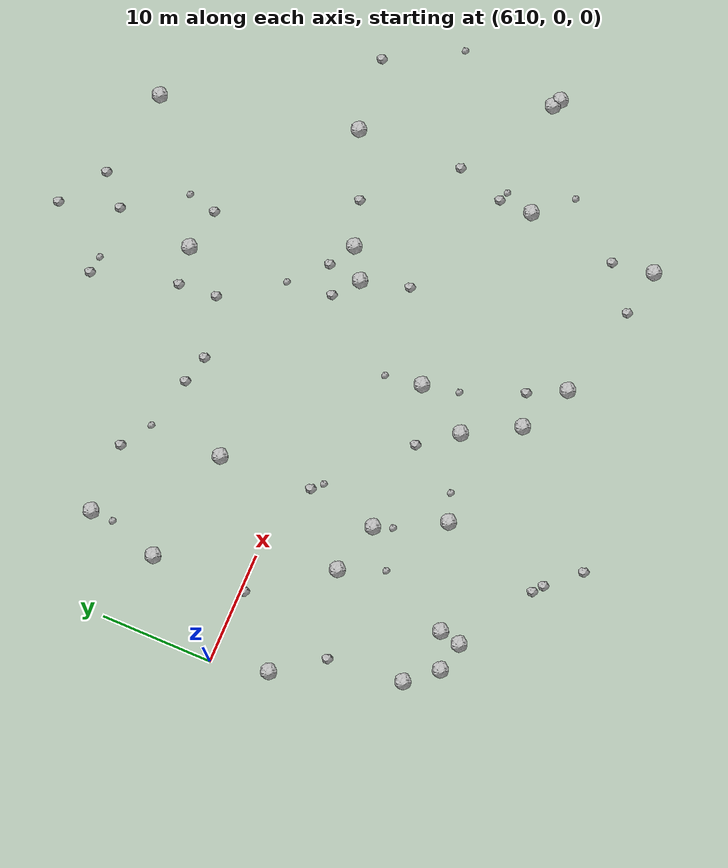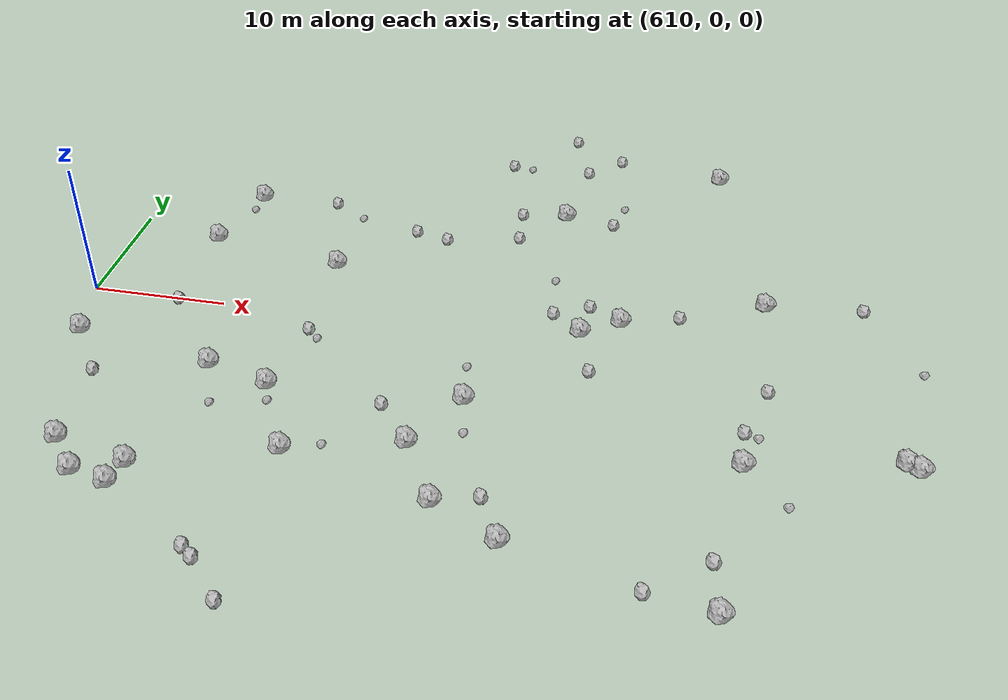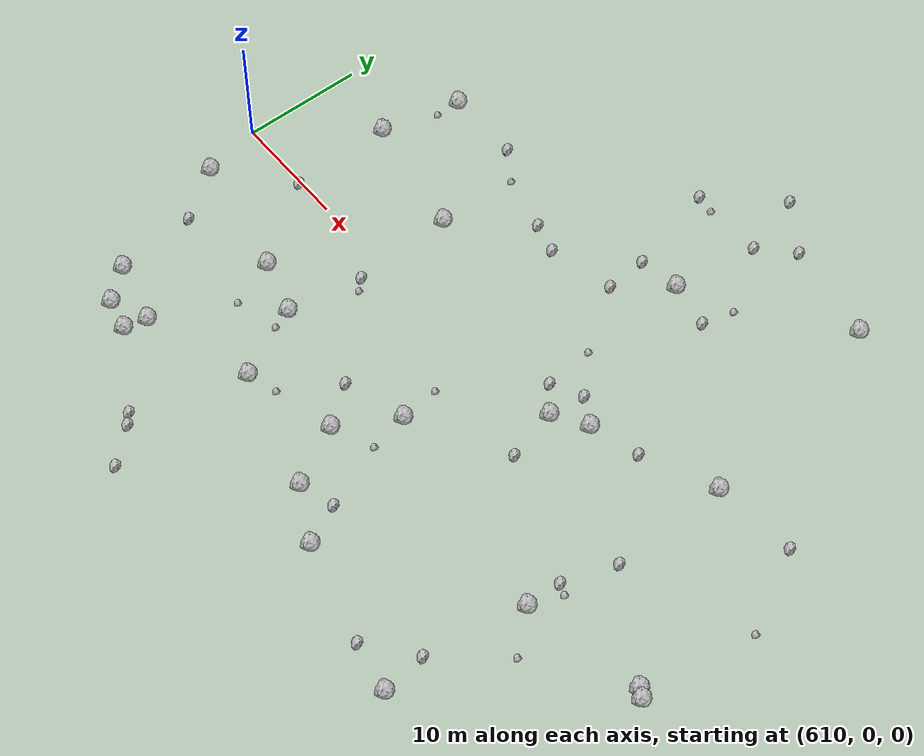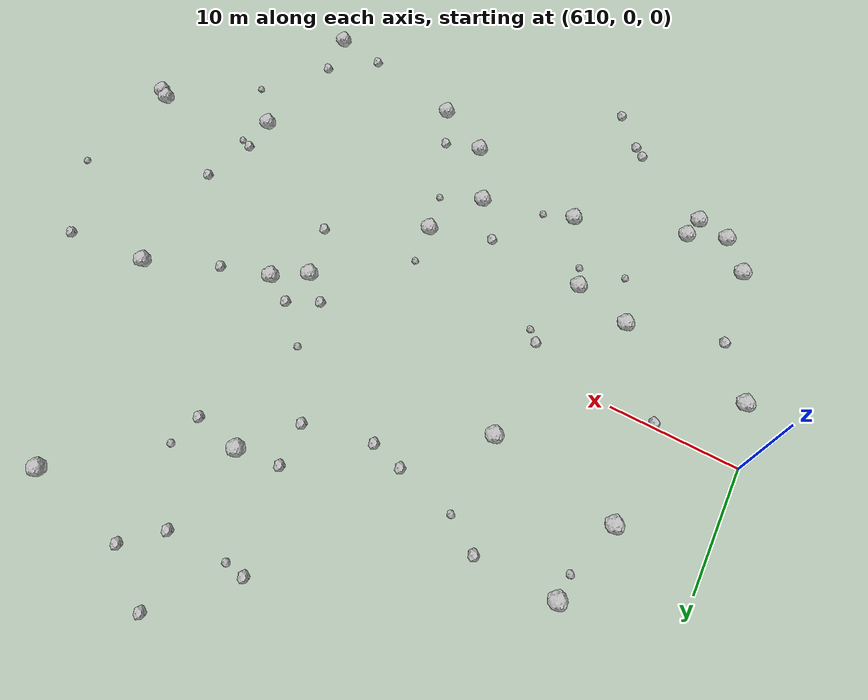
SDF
<sdf version="1.6">
 <world name="default">
  <include><uri>model://sun</uri></include>
  <model name="rock1_16_3">
   <include><uri>model://rock1</uri><pose>617.0494557323835 -18.49480501999132 0.5 0 0 0</pose></include>
  </model>
  <model name="rock1_16_4">
   <include><uri>model://rock1</uri><pose>646.1744182489397 1.2811866185874692 0.5 0 0 0</pose></include>
  </model>
  <model name="rock1_16_5">
   <include><uri>model://rock1</uri><pose>626.8093369121839 6.366160672136488 0.5 0 0 0</pose></include>
  </model>
  <model name="rock1_16_6">
   <include><uri>model://rock1</uri><pose>659.0519653746056 6.8269915031048 0.5 0 0 0</pose></include>
  </model>
  <model name="rock1_16_7">
   <include><uri>model://rock1</uri><pose>667.8788826154242 -8.370564915529727 0.5 0 0 0</pose></include>
  </model>
  <model name="rock1_16_8">
   <include><uri>model://rock1</uri><pose>619.7253466311382 -19.126950748516673 0.5 0 0 0</pose></include>
  </model>
  <model name="rock1_16_9">
   <include><uri>model://rock1</uri><pose>629.1833630455633 -14.240156634659707 0.5 0 0 0</pose></include>
  </model>
  <model name="rock1_16_10">
   <include><uri>model://rock1</uri><pose>639.5715355456684 -7.410364354370216 0.5 0 0 0</pose></include>
  </model>
  <model name="rock1_16_11">
   <include><uri>model://rock1</uri><pose>620.1409756738882 -17.23979650751474 0.5 0 0 0</pose></include>
  </model>
  <model name="rock1_16_12">
   <include><uri>model://rock1</uri><pose>636.8690060828787 -12.196933897625769 0.5 0 0 0</pose></include>
  </model>
  <model name="rock1_16_13">
   <include><uri>model://rock1</uri><pose>656.9567355685807 -22.45739277485777 0.5 0 0 0</pose></include>
  </model>
  <model name="rock1_16_14">
   <include><uri>model://rock1</uri><pose>648.883992103827 2.977677823399162 0.5 0 0 0</pose></include>
  </model>
  <model name="rock1_16_15">
   <include><uri>model://rock1</uri><pose>668.642762389718 -8.817548981771257 0.5 0 0 0</pose></include>
  </model>
  <model name="rock1_16_16">
   <include><uri>model://rock1</uri><pose>644.0830754731516 -19.40189916681614 0.5 0 0 0</pose></include>
  </model>
  <model name="rock1_16_17">
   <include><uri>model://rock1</uri><pose>616.521691105695 8.213514277177623 0.5 0 0 0</pose></include>
  </model>
  <model name="rock1_16_18">
   <include><uri>model://rock1</uri><pose>626.2412509278568 -8.338701966944441 0.5 0 0 0</pose></include>
  </model>
  <model name="rock1_16_19">
   <include><uri>model://rock1</uri><pose>621.6088045655118 -6.969538580016778 0.5 0 0 0</pose></include>
  </model>
  <model name="rock1_16_20">
   <include><uri>model://rock1</uri><pose>657.8710896656933 -10.358247441844032 0.5 0 0 0</pose></include>
  </model>
  <model name="rock1_16_21">
   <include><uri>model://rock1</uri><pose>614.8759232782635 -15.925947518641486 0.5 0 0 0</pose></include>
  </model>
  <model name="rock1_16_22">
   <include><uri>model://rock1</uri><pose>611.1850523628748 -4.986747932894502 0.5 0 0 0</pose></include>
  </model>
  <model name="rock1_16_23">
   <include><uri>model://rock1</uri><pose>639.5150763650269 -16.98180152667323 0.5 0 0 0</pose></include>
  </model>
  <model name="rock1_16_24">
   <include><uri>model://rock1</uri><pose>643.1254025586695 16.451489404362285 0.5 0 0 0</pose></include>
  </model>
  <model name="rock1_16_25">
   <include><uri>model://rock1</uri><pose>655.0637864828053 24.61607443385892 0.5 0 0 0</pose></include>
  </model>
  <model name="rock1_16_26">
   <include><uri>model://rock1</uri><pose>618.0353888954576 14.771364453222361 0.5 0 0 0</pose></include>
  </model>
  <model name="rock2_16_0">
   <include><uri>model://rock2</uri><pose>634.3741797789169 11.203563277441404 0.3 0 0 0</pose></include>
  </model>
  <model name="rock2_16_1">
   <include><uri>model://rock2</uri><pose>637.5689562408426 23.694362332810506 0.3 0 0 0</pose></include>
  </model>
  <model name="rock2_16_2">
   <include><uri>model://rock2</uri><pose>624.343833238371 14.81936848189767 0.3 0 0 0</pose></include>
  </model>
  <model name="rock2_16_3">
   <include><uri>model://rock2</uri><pose>642.4542081114394 -16.127304816830826 0.3 0 0 0</pose></include>
  </model>
  <model name="rock2_16_4">
   <include><uri>model://rock2</uri><pose>627.1999581706012 -23.918186679794537 0.3 0 0 0</pose></include>
  </model>
  <model name="rock2_16_5">
   <include><uri>model://rock2</uri><pose>616.684509730269 -0.27914884845392507 0.3 0 0 0</pose></include>
  </model>
  <model name="rock2_16_6">
   <include><uri>model://rock2</uri><pose>639.9074840502751 12.48327996660587 0.3 0 0 0</pose></include>
  </model>
  <model name="rock2_16_7">
   <include><uri>model://rock2</uri><pose>647.3270812049936 -3.030937451104055 0.3 0 0 0</pose></include>
  </model>
  <model name="rock2_16_8">
   <include><uri>model://rock2</uri><pose>652.6318099389578 -21.633100404069182 0.3 0 0 0</pose></include>
  </model>
  <model name="rock2_16_9">
   <include><uri>model://rock2</uri><pose>659.2862241214746 -2.9651090222887575 0.3 0 0 0</pose></include>
  </model>
  <model name="rock2_16_10">
   <include><uri>model://rock2</uri><pose>646.6174645187002 26.115278770050317 0.3 0 0 0</pose></include>
  </model>
  <model name="rock2_16_11">
   <include><uri>model://rock2</uri><pose>646.5100381079181 4.368497124899086 0.3 0 0 0</pose></include>
  </model>
  <model name="rock2_16_12">
   <include><uri>model://rock2</uri><pose>646.9726681131848 15.754016114296228 0.3 0 0 0</pose></include>
  </model>
  <model name="rock2_16_13">
   <include><uri>model://rock2</uri><pose>644.0375663337886 23.658575492388238 0.3 0 0 0</pose></include>
  </model>
  <model name="rock2_16_14">
   <include><uri>model://rock2</uri><pose>656.4053753400564 -18.678395231520707 0.3 0 0 0</pose></include>
  </model>
  <model name="rock2_16_15">
   <include><uri>model://rock2</uri><pose>631.7800661213571 11.900541035946247 0.3 0 0 0</pose></include>
  </model>
  <model name="rock2_16_16">
   <include><uri>model://rock2</uri><pose>653.0053597515042 4.205523121246479 0.3 0 0 0</pose></include>
  </model>
  <model name="rock2_16_17">
   <include><uri>model://rock2</uri><pose>626.3589737500628 -23.217990979263988 0.3 0 0 0</pose></include>
  </model>
  <model name="rock2_16_18">
   <include><uri>model://rock2</uri><pose>614.1330419989279 -9.184245390822664 0.3 0 0 0</pose></include>
  </model>
  <model name="rock2_16_19">
   <include><uri>model://rock2</uri><pose>627.2227322241487 -2.044890310805254 0.3 0 0 0</pose></include>
  </model>
  <model name="rock2_16_20">
   <include><uri>model://rock2</uri><pose>657.8587614920892 -7.319963095615485 0.3 0 0 0</pose></include>
  </model>
  <model name="rock2_16_21">
   <include><uri>model://rock2</uri><pose>639.6219427493392 15.975333933793777 0.3 0 0 0</pose></include>
  </model>
  <model name="rock2_16_22">
   <include><uri>model://rock2</uri><pose>666.0114354975266 7.519577790785256 0.3 0 0 0</pose></include>
  </model>
  <model name="rock2_16_23">
   <include><uri>model://rock2</uri><pose>629.6621746899499 -26.6774258902472 0.3 0 0 0</pose></include>
  </model>
  <model name="rock2_16_24">
   <include><uri>model://rock2</uri><pose>642.4132748233155 28.952282257324086 0.3 0 0 0</pose></include>
  </model>
  <model name="rock2_16_25">
   <include><uri>model://rock2</uri><pose>643.9979301124132 3.0779801269689386 0.3 0 0 0</pose></include>
  </model>
  <model name="rock2_16_26">
   <include><uri>model://rock2</uri><pose>634.3758021599912 -8.958110760187648 0.3 0 0 0</pose></include>
  </model>
  <model name="rock3_16_0">
   <include><uri>model://rock3</uri><pose>640.2174561567448 -10.713128876937834 0.2 0 0 0</pose></include>
  </model>
  <model name="rock3_16_1">
   <include><uri>model://rock3</uri><pose>643.5389013717881 7.214725785194801 0.2 0 0 0</pose></include>
  </model>
  <model name="rock3_16_2">
   <include><uri>model://rock3</uri><pose>628.0473814056468 -2.9460221142271834 0.2 0 0 0</pose></include>
  </model>
  <model name="rock3_16_3">
   <include><uri>model://rock3</uri><pose>631.6302381367016 -13.448739906228578 0.2 0 0 0</pose></include>
  </model>
  <model name="rock3_16_4">
   <include><uri>model://rock3</uri><pose>626.8119638829656 -10.004516039205178 0.2 0 0 0</pose></include>
  </model>
  <model name="rock3_16_5">
   <include><uri>model://rock3</uri><pose>647.6058549115967 18.374782070751564 0.2 0 0 0</pose></include>
  </model>
  <model name="rock3_16_6">
   <include><uri>model://rock3</uri><pose>669.6904492194939 0.8582607219400238 0.2 0 0 0</pose></include>
  </model>
  <model name="rock3_16_7">
   <include><uri>model://rock3</uri><pose>623.1242290234036 -10.914823882425985 0.2 0 0 0</pose></include>
  </model>
  <model name="rock3_16_8">
   <include><uri>model://rock3</uri><pose>639.1629909626059 23.453245685489435 0.2 0 0 0</pose></include>
  </model>
  <model name="rock3_16_9">
   <include><uri>model://rock3</uri><pose>658.7630238931503 -7.700982656908369 0.2 0 0 0</pose></include>
  </model>
  <model name="rock3_16_10">
   <include><uri>model://rock3</uri><pose>639.0760878923074 -4.0929719201389005 0.2 0 0 0</pose></include>
  </model>
  <model name="rock3_16_11">
   <include><uri>model://rock3</uri><pose>617.9054615480949 12.704172337604199 0.2 0 0 0</pose></include>
  </model>
  <model name="rock3_16_12">
   <include><uri>model://rock3</uri><pose>660.6181100725584 -13.532617978455463 0.2 0 0 0</pose></include>
  </model>
  <model name="rock3_16_13">
   <include><uri>model://rock3</uri><pose>626.9869812125374 13.03344316974838 0.2 0 0 0</pose></include>
  </model>
 </world>
</sdf>
